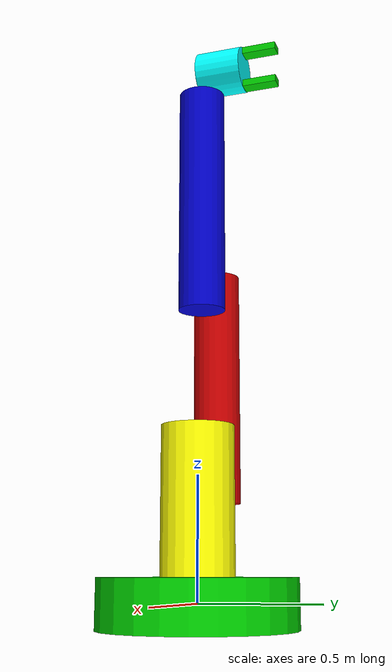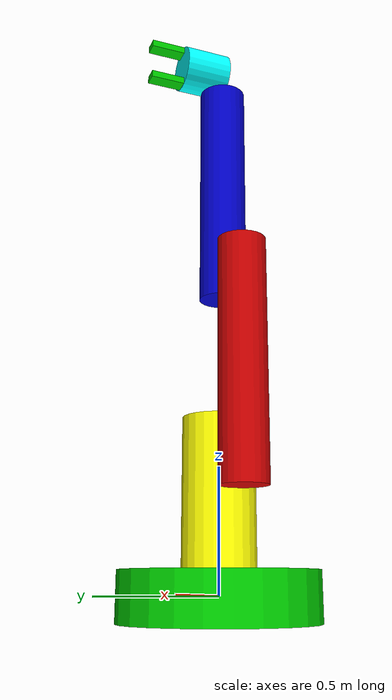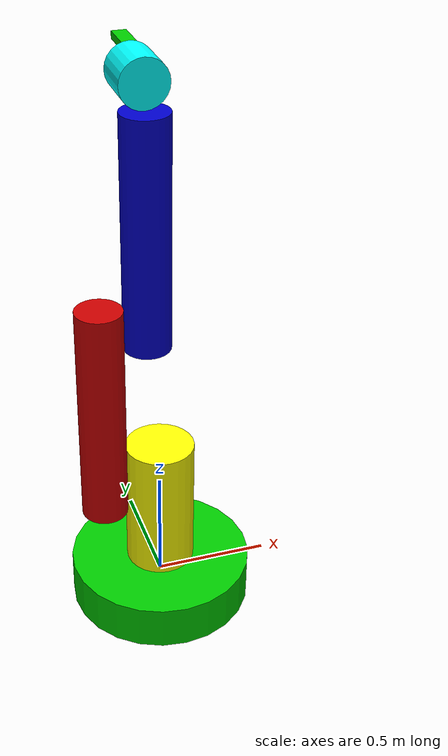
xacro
<?xml version="1.0"?>
<robot xmlns:xacro="http://www.ros.org/wiki/xacro">

    <xacro:include filename="inertial_macros.xacro"/>

    <!-- define colors -->
    <!-- rgba: red green blue transparency -->

    <material name="blue">
        <color rgba="0 0 0.8 1"/>
    </material>

    <material name="red">
        <color rgba="0.8 0 0 1"/>
    </material>

    <material name="green">
        <color rgba="0 0.8 0 1"/>
    </material>

    <material name="yellow">
        <color rgba="1 1 0 1"/>
    </material>

    <material name="cyan">
        <color rgba="0 1 1 1"/>
    </material>

    <!-- links: connected together with joints -->

    <!-- joints -->
    <!-- origin: defines position and orientation of joint relative to parent link -->
    <!-- axis: defines axis of rotation -->
    <!-- limit: defines limits for joint's motion -->

    <!-- world link to connect robot to the world -->
    <link name="world"/>

    <!-- fixed_joint: fixed to connect base_link to world -->
    <joint name="fixed_joint" type="fixed">
        <!--rpy: roll pitch yaw -->
        <!-- xyz: coordinate displacement -->
        <origin rpy="0 0 0" xyz="0 0 0"/>
        <parent link="world"/>
        <child link="base_link"/>
    </joint>

    <!-- base_link of manipulator -->
    <link name="base_link">
        <visual>
            <geometry>
                <cylinder length="0.2" radius="0.4"/>
            </geometry>
            <origin rpy="0 0 0" xyz="0 0 0"/>
            <material name="green"/>
        </visual>
        <collision>
            <geometry>
                <cylinder length="0.2" radius="0.4"/>
            </geometry>
            <origin rpy="0 0 0" xyz="0 0 0"/>
        </collision>
        <xacro:inertial_cylinder mass="1.5" length="0.2" radius="0.4">
            <origin rpy="0 0 0" xyz="0 0 0"/>
        </xacro:inertial_cylinder>
    </link>

    <!-- joint_1: axial revolute to connect base to link_1 -->
    <joint name="joint_1" type="revolute">
        <parent link="base_link"/>
        <child link="link_1"/>
        <origin rpy="0 0 0" xyz="0 0 0.1"/>
        <axis xyz="0 0 1"/>
        <limit effort="300" velocity="2.0" lower="-3.141593" upper="3.141593"/>
    </joint>

    <!-- link_1 of manipulator -->
    <link name="link_1">
        <visual>
            <geometry>
                <cylinder length="0.6" radius="0.15"/>
            </geometry>
            <origin rpy="0 0 0" xyz="0 0 0.3"/>
            <material name="yellow"/>
        </visual>
        <collision>
            <geometry>
                <cylinder length="0.6" radius="0.15"/>
            </geometry>
            <origin rpy="0 0 0" xyz="0 0 0.3"/>
        </collision>
        <xacro:inertial_cylinder mass="1.0" length="0.6" radius="0.15">
            <origin rpy="0 0 0" xyz="0 0 0.3"/>
        </xacro:inertial_cylinder>
    </link>

    <!-- joint_2: transverse revolute to connect link_1 to link_2 -->
    <joint name="joint_2" type="revolute">
        <parent link="link_1"/>
        <child link="link_2"/>
        <origin rpy="0 -1.570796 0" xyz="-0.15 0 0.5"/>
        <axis xyz="0 0 1"/>
        <limit effort="300" velocity="2.0" lower="-3.141593" upper="3.141593"/>
    </joint>

    <!-- link_2 of manipulator -->
    <link name="link_2">
        <visual>
            <geometry>
                <cylinder length="1" radius="0.1"/>
            </geometry>
            <origin rpy="0 1.570796 0" xyz="0.3 0 0.1"/>
            <material name="red"/>
        </visual>
        <collision>
            <geometry>
                <cylinder length="1" radius="0.1"/>
            </geometry>
            <origin rpy="0 1.570796 0" xyz="0.3 0 0.1"/>
        </collision>
        <xacro:inertial_cylinder mass="0.4" length="1" radius="0.1">
            <origin rpy="0 1.570796 0" xyz="0.3 0 0.1"/>
        </xacro:inertial_cylinder>
    </link>

    <!-- joint_3: transverse revolute to connect link_2 to link_3 -->
    <joint name="joint_3" type="revolute">
        <parent link="link_2"/>
        <child link="link_3"/>
        <origin rpy="0 0 0" xyz="0.7 0 0"/>
        <axis xyz="0 0 1"/>
        <limit effort="300" velocity="2.0" lower="-3.141593" upper="3.141593"/>
    </joint>

    <!-- link_3 of manipulator -->
    <link name="link_3">
        <visual>
            <geometry>
                <cylinder length="1" radius="0.1"/>
            </geometry>
            <origin rpy="0 1.570796 0" xyz="0.4 0 -0.1"/>
            <material name="blue"/>
        </visual>
        <collision>
            <geometry>
                <cylinder length="1" radius="0.1"/>
            </geometry>
            <origin rpy="0 1.570796 0" xyz="0.4 0 -0.1"/>
        </collision>
        <xacro:inertial_cylinder mass="0.4" length="1" radius="0.1">
            <origin rpy="0 1.570796 0" xyz="0.4 0 -0.1"/>
        </xacro:inertial_cylinder>
    </link>

    <!-- joint_4: axial revolute to connect link_3 to end effector -->
    <joint name="joint_4" type="revolute">
        <parent link="link_3"/>
        <child link="link_4"/>
        <origin rpy="-1.570796 0 0" xyz="1 0 -0.1"/>
        <axis xyz="0 0 1"/>
        <limit effort="300" velocity="2.0" lower="-3.141593" upper="3.141593"/>
    </joint>

    <!-- link_4 of manipulator (end effector) -->
    <link name="link_4">
        <visual>
            <geometry>
                <cylinder length="0.2" radius="0.1"/>
            </geometry>
            <origin rpy="0 0 0" xyz="0 0 0.1"/>
            <material name="cyan"/>
        </visual>
        <collision>
            <geometry>
                <cylinder length="0.2" radius="0.1"/>
            </geometry>
            <origin rpy="0 0 0" xyz="0 0 0.1"/>
        </collision>
        <xacro:inertial_cylinder mass="0.2" length="0.2" radius="0.1">
            <origin rpy="0 0 0" xyz="0 0 0.1"/>
        </xacro:inertial_cylinder>
    </link>

    <!-- joint_5: prismatic moves manipulator's finger (link_5) -->
    <joint name="joint_5" type="prismatic">
        <parent link="link_4"/>
        <child link="link_5"/>
        <origin rpy="0 0 0" xyz="0.08 0 0.2"/>
        <axis xyz="1 0 0"/>
        <limit effort="300" velocity="2.0" lower="-0.12" upper="0"/>
    </joint>

    <!-- link_5 of manipulator (finger 1) -->
    <link name="link_5">
        <visual>
            <geometry>
                <box size="0.03 0.06 0.15"/>
            </geometry>
            <origin rpy="0 0 0" xyz="0 0 0.075"/>
            <material name="green"/>
        </visual>
        <collision>
            <geometry>
                <box size="0.03 0.06 0.15"/>
            </geometry>
            <origin rpy="0 0 0" xyz="0 0 0.075"/>
        </collision>
        <xacro:inertial_box mass="0.05" x="0.03" y="0.06" z="0.15">
            <origin rpy="0 0 0" xyz="0 0 0.075"/>
        </xacro:inertial_box>
    </link>

    <!-- joint_6: fixed to connect link_6 to link_4 -->
    <joint name="joint_6" type="fixed">
        <parent link="link_4"/>
        <child link="link_6"/>
        <origin rpy="0 0 0" xyz="-0.08 0 0.2"/>
    </joint>

    <!-- link_6 of manipulator (finger 2) -->
    <link name="link_6">
        <visual>
            <geometry>
                <box size="0.03 0.06 0.15"/>
            </geometry>
            <origin rpy="0 0 0" xyz="0 0 0.075"/>
            <material name="green"/>
        </visual>
        <collision>
            <geometry>
                <box size="0.03 0.06 0.15"/>
            </geometry>
            <origin rpy="0 0 0" xyz="0 0 0.075"/>
        </collision>
        <xacro:inertial_box mass="0.05" x="0.03" y="0.06" z="0.15">
            <origin rpy="0 0 0" xyz="0 0 0.075"/>
        </xacro:inertial_box>
    </link>
</robot>
